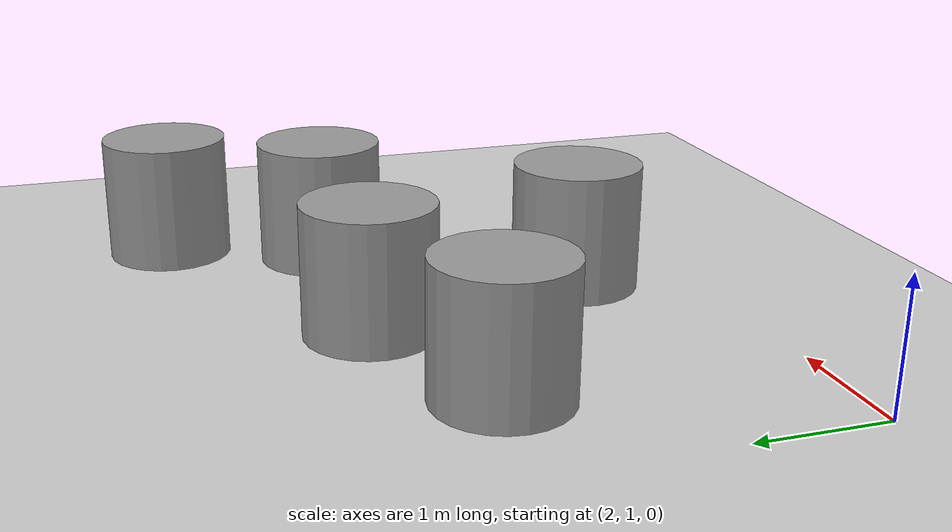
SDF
<sdf version="1.6">
 <world name="default">
  <light name="sun" type="directional">
   <pose>0 0 10 0 -0 0</pose>
   <diffuse>0.8 0.8 0.8 1</diffuse>
   <specular>0.2 0.2 0.2 1</specular>
   <attenuation>
    <range>1000</range>
    <constant>0.9</constant>
    <linear>0.01</linear>
    <quadratic>0.001</quadratic>
   </attenuation>
   <direction>-0.5 0.1 -0.9</direction>
  </light>
  <model name="ground_plane">
   <static>1</static>
   <link name="link">
    <collision name="collision">
     <geometry><plane><normal>0 0 1</normal><size>100 100</size></plane></geometry>
     <surface>
      <contact><collide_bitmask>65535</collide_bitmask></contact>
      <friction><ode><mu>100</mu><mu2>50</mu2></ode></friction>
     </surface>
    </collision>
    <visual name="visual">
     <cast_shadows>0</cast_shadows>
     <geometry><plane><normal>0 0 1</normal><size>100 100</size></plane></geometry>
     <material>
      <script><uri>file://media/materials/scripts/gazebo.material</uri><name>Gazebo/Grey</name></script>
     </material>
    </visual>
   </link>
  </model>
  <gravity>0 0 -9.8</gravity>
  <magnetic_field>6e-06 2.3e-05 -4.2e-05</magnetic_field>
  <atmosphere type="adiabatic"/>
  <physics name="default_physics" default="0" type="ode">
   <max_step_size>0.001</max_step_size>
   <real_time_factor>1</real_time_factor>
   <real_time_update_rate>1000</real_time_update_rate>
  </physics>
  <scene><ambient>0.4 0.4 0.4 1</ambient><background>0.7 0.7 0.7 1</background><shadows>1</shadows></scene>
  <audio><device>default</device></audio>
  <spherical_coordinates>
   <surface_model>EARTH_WGS84</surface_model>
   <latitude_deg>0</latitude_deg>
   <longitude_deg>0</longitude_deg>
   <elevation>0</elevation>
   <heading_deg>0</heading_deg>
  </spherical_coordinates>
  <model name="unit_cylinder">
   <pose>3 3.25 0.499998 3e-06 -3e-06 0</pose>
   <link name="link">
    <inertial>
     <mass>1</mass>
     <inertia><ixx>0.145833</ixx><ixy>0</ixy><ixz>0</ixz><iyy>0.145833</iyy><iyz>0</iyz><izz>0.125</izz></inertia>
    </inertial>
    <collision name="collision">
     <geometry><cylinder><radius>0.5</radius><length>1</length></cylinder></geometry>
    </collision>
    <visual name="visual">
     <geometry><cylinder><radius>0.5</radius><length>1</length></cylinder></geometry>
     <material>
      <script><name>Gazebo/Grey</name><uri>file://media/materials/scripts/gazebo.material</uri></script>
     </material>
    </visual>
   </link>
  </model>
  <model name="unit_cylinder_0">
   <pose>6.5056 5.00147 0.49999 0 -0 0.00028</pose>
   <link name="link">
    <inertial>
     <mass>1</mass>
     <inertia><ixx>0.145833</ixx><ixy>0</ixy><ixz>0</ixz><iyy>0.145833</iyy><iyz>0</iyz><izz>0.125</izz></inertia>
    </inertial>
    <collision name="collision">
     <geometry><cylinder><radius>0.5</radius><length>1</length></cylinder></geometry>
    </collision>
    <visual name="visual">
     <geometry><cylinder><radius>0.5</radius><length>1</length></cylinder></geometry>
     <material>
      <script><name>Gazebo/Grey</name><uri>file://media/materials/scripts/gazebo.material</uri></script>
     </material>
    </visual>
   </link>
  </model>
  <model name="unit_cylinder_1">
   <pose>4.8 2 0.499997 4e-06 3e-06 -0</pose>
   <link name="link">
    <inertial>
     <mass>1</mass>
     <inertia><ixx>0.145833</ixx><ixy>0</ixy><ixz>0</ixz><iyy>0.145833</iyy><iyz>0</iyz><izz>0.125</izz></inertia>
    </inertial>
    <collision name="collision">
     <geometry><cylinder><radius>0.5</radius><length>1</length></cylinder></geometry>
    </collision>
    <visual name="visual">
     <geometry><cylinder><radius>0.5</radius><length>1</length></cylinder></geometry>
     <material>
      <script><name>Gazebo/Grey</name><uri>file://media/materials/scripts/gazebo.material</uri></script>
     </material>
    </visual>
   </link>
  </model>
  <model name="unit_cylinder_2">
   <pose>6.00665 3.80062 0.499939 4e-06 4e-06 0.000139</pose>
   <link name="link">
    <inertial>
     <mass>1</mass>
     <inertia><ixx>0.145833</ixx><ixy>0</ixy><ixz>0</ixz><iyy>0.145833</iyy><iyz>0</iyz><izz>0.125</izz></inertia>
    </inertial>
    <collision name="collision">
     <geometry><cylinder><radius>0.5</radius><length>1</length></cylinder></geometry>
    </collision>
    <visual name="visual">
     <geometry><cylinder><radius>0.5</radius><length>1</length></cylinder></geometry>
     <material>
      <script><name>Gazebo/Grey</name><uri>file://media/materials/scripts/gazebo.material</uri></script>
     </material>
    </visual>
   </link>
  </model>
  <model name="unit_cylinder_3">
   <pose>4.3 3.8 0.499992 -3e-06 -4e-06 -0</pose>
   <link name="link">
    <inertial>
     <mass>1</mass>
     <inertia><ixx>0.145833</ixx><ixy>0</ixy><ixz>0</ixz><iyy>0.145833</iyy><iyz>0</iyz><izz>0.125</izz></inertia>
    </inertial>
    <collision name="collision">
     <geometry><cylinder><radius>0.5</radius><length>1</length></cylinder></geometry>
    </collision>
    <visual name="visual">
     <geometry><cylinder><radius>0.5</radius><length>1</length></cylinder></geometry>
     <material>
      <script><name>Gazebo/Grey</name><uri>file://media/materials/scripts/gazebo.material</uri></script>
     </material>
    </visual>
   </link>
  </model>
 </world>
</sdf>
